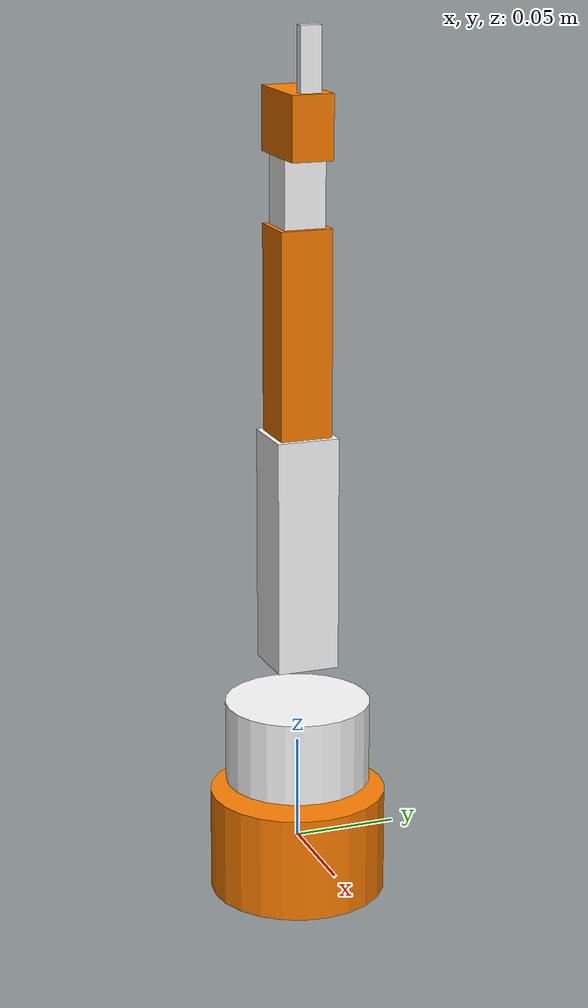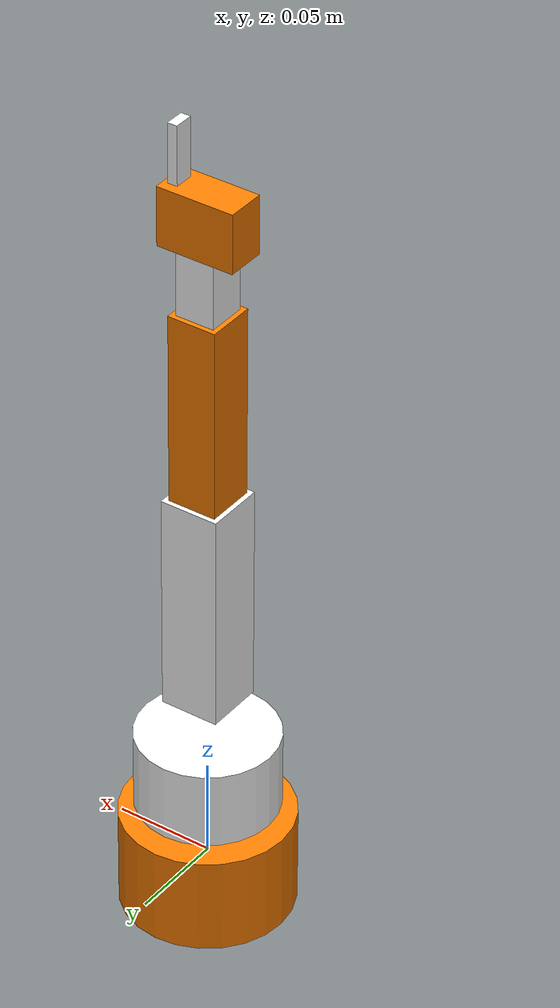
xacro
<?xml version="1.0"?>
<robot name="erk" xmlns:xacro="http://www.ros.org/wiki/xacro">

  <!-- World Fixed Link -->
  <link name="world"/>

  <joint name="world_to_base" type="fixed">
    <parent link="world"/>
    <child link="base_link"/>
    <origin xyz="0 0 0" rpy="0 0 0"/>
  </joint>

  <!-- 1. Base Link -->
  <link name="base_link">
    <visual>
      <geometry>
        <cylinder length="0.05087" radius="0.0425"/>
      </geometry>
      <material name="orange">
        <color rgba="1.0 0.5 0.0 1.0"/>
      </material>
    </visual>
    <collision>
      <geometry>
        <cylinder length="0.05087" radius="0.0425"/>
      </geometry>
    </collision>
    <inertial>
      <mass value="0.2"/>
      <origin xyz="0 0 0"/>
      <inertia ixx="0.0001" ixy="0" ixz="0" iyy="0.0001" iyz="0" izz="0.0001"/>
    </inertial>
  </link>

  <!-- Joint 1: Base Rotation (Z-axis) -->
  <joint name="Revolute_1" type="revolute">
    <parent link="base_link"/>
    <child link="base_link_upper"/>
    <origin xyz="0 0 0.05087" rpy="0 0 0"/>
    <axis xyz="0 0 1"/>
    <limit lower="0.0" upper="3.14159" effort="40.0" velocity="0.2"/>
  </joint>

  <!-- 2. Rotating Base Upper -->
  <link name="base_link_upper">
    <visual>
      <geometry>
        <cylinder length="0.04" radius="0.035"/>
      </geometry>
      <material name="white">
        <color rgba="1.0 1.0 1.0 1.0"/>
      </material>
    </visual>
    <collision>
      <geometry>
        <cylinder length="0.04" radius="0.035"/>
      </geometry>
    </collision>
    <inertial>
      <mass value="0.1"/>
      <origin xyz="0 0 0"/>
      <inertia ixx="0.0001" ixy="0" ixz="0" iyy="0.0001" iyz="0" izz="0.0001"/>
    </inertial>
  </link>

  <!-- Joint 2: Shoulder Lift (Y-axis) -->
  <joint name="Revolute_2" type="revolute">
    <parent link="base_link_upper"/>
    <child link="arm_link_1"/>
    <origin xyz="0 0 0.04" rpy="0 0 0"/>
    <axis xyz="0 1 0"/>
    <limit lower="-3.14159" upper="0.0" effort="40.0" velocity="0.2"/>
  </joint>

  <!-- 3. Upper Arm Link 1 -->
  <link name="arm_link_1">
    <visual>
      <origin xyz="0 0 0.05655" rpy="0 0 0"/>
      <geometry>
        <box size="0.03 0.03 0.11312"/>
      </geometry>
      <material name="white"/>
    </visual>
    <collision>
      <origin xyz="0 0 0.05655" rpy="0 0 0"/>
      <geometry>
        <box size="0.03 0.03 0.11312"/>
      </geometry>
    </collision>
    <inertial>
      <mass value="0.15"/>
      <origin xyz="0 0 0.05655"/>
      <inertia ixx="0.0002" ixy="0" ixz="0" iyy="0.0002" iyz="0" izz="0.0001"/>
    </inertial>
  </link>

  <!-- Joint 3: Elbow Pitch (Y-axis) -->
  <joint name="Revolute_3" type="revolute">
    <parent link="arm_link_1"/>
    <child link="arm_link_2"/>
    <origin xyz="0 0 0.11312" rpy="0 0 0"/>
    <axis xyz="0 1 0"/>
    <limit lower="0.0" upper="3.14159" effort="40.0" velocity="0.2"/>
  </joint>

  <!-- 4. Forearm Link 2 -->
  <link name="arm_link_2">
    <visual>
      <origin xyz="0 0 0.0491" rpy="0 0 0"/>
      <geometry>
        <box size="0.025 0.025 0.0982"/>
      </geometry>
      <material name="orange"/>
    </visual>
    <collision>
      <origin xyz="0 0 0.0491" rpy="0 0 0"/>
      <geometry>
        <box size="0.025 0.025 0.0982"/>
      </geometry>
    </collision>
    <inertial>
      <mass value="0.1"/>
      <origin xyz="0 0 0.0491"/>
      <inertia ixx="0.0001" ixy="0" ixz="0" iyy="0.0001" iyz="0" izz="0.0001"/>
    </inertial>
  </link>

  <!-- Joint 4: Forearm Roll (Z-axis) -->
  <joint name="Revolute_4" type="revolute">
    <parent link="arm_link_2"/>
    <child link="arm_link_3"/>
    <origin xyz="0 0 0.0982" rpy="0 0 0"/>
    <axis xyz="0 0 1"/>
    <limit lower="-1.5708" upper="1.5708" effort="20.0" velocity="0.2"/>
  </joint>

  <!-- 5. Wrist Bracket Link 3 -->
  <link name="arm_link_3">
    <visual>
      <origin xyz="0 0 0.016" rpy="0 0 0"/>
      <geometry>
        <box size="0.02 0.02 0.0321"/>
      </geometry>
      <material name="white"/>
    </visual>
    <collision>
      <origin xyz="0 0 0.016" rpy="0 0 0"/>
      <geometry>
        <box size="0.02 0.02 0.0321"/>
      </geometry>
    </collision>
    <inertial>
      <mass value="0.05"/>
      <origin xyz="0 0 0.016"/>
      <inertia ixx="0.00005" ixy="0" ixz="0" iyy="0.00005" iyz="0" izz="0.00005"/>
    </inertial>
  </link>

  <!-- Joint 5: Wrist Tilt (Y-axis) -->
  <joint name="Revolute_5" type="revolute">
    <parent link="arm_link_3"/>
    <child link="gripper_base"/>
    <origin xyz="0 0 0.0321" rpy="0 0 0"/>
    <axis xyz="0 1 0"/>
    <limit lower="-1.5708" upper="1.5708" effort="20.0" velocity="0.2"/>
  </joint>

  <!-- 6. Gripper Base -->
  <link name="gripper_base">
    <visual>
      <origin xyz="0 0 0.015" rpy="0 0 0"/>
      <geometry>
        <box size="0.04 0.02 0.03"/>
      </geometry>
      <material name="orange"/>
    </visual>
    <collision>
      <origin xyz="0 0 0.015" rpy="0 0 0"/>
      <geometry>
        <box size="0.04 0.02 0.03"/>
      </geometry>
    </collision>
    <inertial>
      <mass value="0.05"/>
      <origin xyz="0 0 0.015"/>
      <inertia ixx="0.00005" ixy="0" ixz="0" iyy="0.00005" iyz="0" izz="0.00005"/>
    </inertial>
  </link>

  <!-- Joint 6: Gripper Jaw (Revolute/Prismatic) -->
  <joint name="Gripper" type="revolute">
    <parent link="gripper_base"/>
    <child link="gripper_finger_left"/>
    <origin xyz="0.015 0 0.03" rpy="0 0 0"/>
    <axis xyz="0 1 0"/>
    <limit lower="0.0" upper="0.8" effort="10.0" velocity="0.2"/>
  </joint>

  <!-- Left Finger Link -->
  <link name="gripper_finger_left">
    <visual>
      <origin xyz="0 0 0.015" rpy="0 0 0"/>
      <geometry>
        <box size="0.005 0.01 0.03"/>
      </geometry>
      <material name="white"/>
    </visual>
    <collision>
      <origin xyz="0 0 0.015" rpy="0 0 0"/>
      <geometry>
        <box size="0.005 0.01 0.03"/>
      </geometry>
    </collision>
    <inertial>
      <mass value="0.01"/>
      <origin xyz="0 0 0.015"/>
      <inertia ixx="0.00001" ixy="0" ixz="0" iyy="0.00001" iyz="0" izz="0.00001"/>
    </inertial>
  </link>
  <!-- Gazebo Simulation Plugin -->
  <gazebo>
    <plugin filename="gz_ros2_control-system" name="gz_ros2_control::GazeboSimROS2ControlPlugin">
      <parameters>$(find erk_description)/config/gazebo_controllers.yaml</parameters>
    </plugin>
  </gazebo>

  <!-- ros2_control Hardware Interface Definition -->
  <ros2_control name="GazeboSystem" type="system">
    <hardware>
      <plugin>gz_ros2_control/GazeboSimSystem</plugin>
    </hardware>

    <joint name="Revolute_1">
      <command_interface name="position"/>
      <state_interface name="position"/>
      <state_interface name="velocity"/>
    </joint>
    <joint name="Revolute_2">
      <command_interface name="position"/>
      <state_interface name="position"/>
      <state_interface name="velocity"/>
    </joint>
    <joint name="Revolute_3">
      <command_interface name="position"/>
      <state_interface name="position"/>
      <state_interface name="velocity"/>
    </joint>
    <joint name="Revolute_4">
      <command_interface name="position"/>
      <state_interface name="position"/>
      <state_interface name="velocity"/>
    </joint>
    <joint name="Revolute_5">
      <command_interface name="position"/>
      <state_interface name="position"/>
      <state_interface name="velocity"/>
    </joint>
    <joint name="Gripper">
      <command_interface name="position"/>
      <state_interface name="position"/>
      <state_interface name="velocity"/>
    </joint>
  </ros2_control>
</robot>
